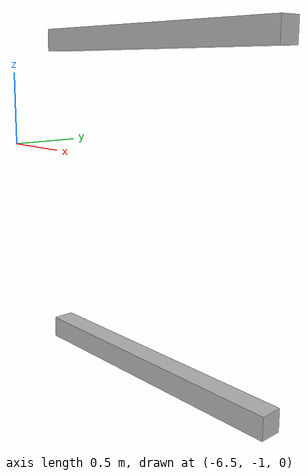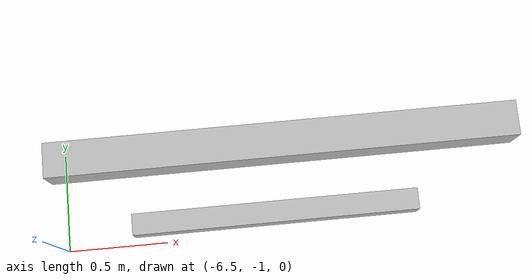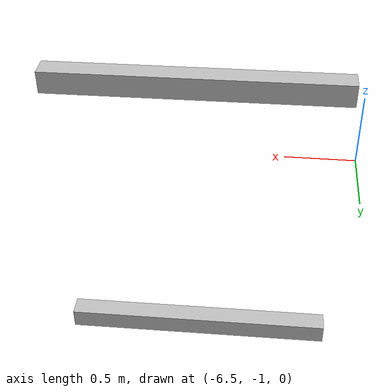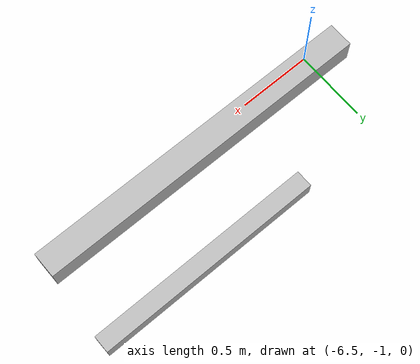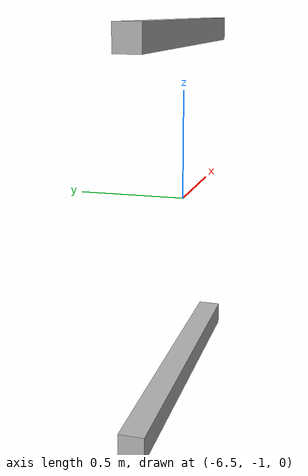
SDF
<sdf version="1.7">
 <world name="default">
  <model name="orthogonal_747_2.000.15_TS">
   <static>1</static>
   <link name="x_link_0_2_0">
    <inertial>
     <mass>1</mass>
     <inertia>
      <ixx>0.166667</ixx>
      <ixy>0</ixy>
      <ixz>0</ixz>
      <iyy>0.166667</iyy>
      <iyz>0</iyz>
      <izz>0.166667</izz>
     </inertia>
    </inertial>
    <pose>1.075 4.3 1.075 0 -0 0</pose>
    <visual name="visual_0">
     <laser_retro>323</laser_retro>
     <geometry><box><size>2 1e-06 0.15</size></box></geometry>
     <material>
      <script><name>Gazebo/Grey</name><uri>file://media/materials/scripts/gazebo.material</uri></script>
      <shader type="pixel"><normal_map>__default__</normal_map></shader>
      <ambient>0.678 0.498 0.659 1</ambient>
      <diffuse>0.7 0.7 0.7 1</diffuse>
      <specular>0.01 0.01 0.01 1</specular>
      <emissive>0 0 0 1</emissive>
     </material>
     <pose>0 -0.075 0 0 -0 0</pose>
     <transparency>1</transparency>
    </visual>
    <visual name="visual_1">
     <laser_retro>324</laser_retro>
     <geometry><box><size>2 1e-06 0.15</size></box></geometry>
     <material>
      <script><name>Gazebo/Grey</name><uri>file://media/materials/scripts/gazebo.material</uri></script>
      <shader type="pixel"><normal_map>__default__</normal_map></shader>
      <ambient>0.447 0.624 0.812 1</ambient>
      <diffuse>0.7 0.7 0.7 1</diffuse>
      <specular>0.01 0.01 0.01 1</specular>
      <emissive>0 0 0 1</emissive>
     </material>
     <pose>0 0.075 0 0 -0 0</pose>
     <transparency>1</transparency>
    </visual>
    <visual name="visual_2">
     <laser_retro>325</laser_retro>
     <geometry><box><size>2 0.15 1e-06</size></box></geometry>
     <material>
      <script><name>Gazebo/Grey</name><uri>file://media/materials/scripts/gazebo.material</uri></script>
      <shader type="pixel"><normal_map>__default__</normal_map></shader>
      <ambient>0.988 0.686 0.243 1</ambient>
      <diffuse>0.7 0.7 0.7 1</diffuse>
      <specular>0.01 0.01 0.01 1</specular>
      <emissive>0 0 0 1</emissive>
     </material>
     <pose>0 0 -0.075 0 -0 0</pose>
     <transparency>1</transparency>
    </visual>
    <visual name="visual_3">
     <laser_retro>326</laser_retro>
     <geometry><box><size>1e-06 0.15 0.15</size></box></geometry>
     <material>
      <script><name>Gazebo/Grey</name><uri>file://media/materials/scripts/gazebo.material</uri></script>
      <shader type="pixel"><normal_map>__default__</normal_map></shader>
      <ambient>0.988 0.914 0.31 1</ambient>
      <diffuse>0.7 0.7 0.7 1</diffuse>
      <specular>0.01 0.01 0.01 1</specular>
      <emissive>0 0 0 1</emissive>
     </material>
     <pose>1 0 0 0 -0 0</pose>
     <transparency>1</transparency>
    </visual>
    <visual name="visual_4">
     <laser_retro>327</laser_retro>
     <geometry><box><size>2 0.15 1e-06</size></box></geometry>
     <material>
      <script><name>Gazebo/Grey</name><uri>file://media/materials/scripts/gazebo.material</uri></script>
      <shader type="pixel"><normal_map>__default__</normal_map></shader>
      <ambient>0.937 0.161 0.161 1</ambient>
      <diffuse>0.7 0.7 0.7 1</diffuse>
      <specular>0.01 0.01 0.01 1</specular>
      <emissive>0 0 0 1</emissive>
     </material>
     <pose>0 0 0.075 0 -0 0</pose>
     <transparency>1</transparency>
    </visual>
    <visual name="visual_5">
     <laser_retro>328</laser_retro>
     <geometry><box><size>1e-06 0.15 0.15</size></box></geometry>
     <material>
      <script><name>Gazebo/Grey</name><uri>file://media/materials/scripts/gazebo.material</uri></script>
      <shader type="pixel"><normal_map>__default__</normal_map></shader>
      <ambient>0.541 0.886 0.204 1</ambient>
      <diffuse>0.7 0.7 0.7 1</diffuse>
      <specular>0.01 0.01 0.01 1</specular>
      <emissive>0 0 0 1</emissive>
     </material>
     <pose>-1 0 0 0 -0 0</pose>
     <transparency>1</transparency>
    </visual>
    <visual name="visual_texture">
     <geometry><box><size>1.9998 0.149985 0.149985</size></box></geometry>
     <material>
      <script>
       <uri>model://BASE_MODELS/simple_block_v2_textured/materials/scripts</uri>
       <uri>model://BASE_MODELS/simple_block_v2_textured/materials/textures</uri>
       <name>metal</name>
      </script>
     </material>
     <laser_retro>329</laser_retro>
    </visual>
    <collision name="collision">
     <geometry><box><size>2 0.15 0.15</size></box></geometry>
     <surface>
      <friction>
       <ode><mu>1</mu><mu2>1</mu2><fdir1>0 0 0</fdir1><slip1>0</slip1><slip2>0</slip2></ode>
       <torsional>
        <coefficient>1</coefficient>
        <patch_radius>0</patch_radius>
        <surface_radius>0</surface_radius>
        <use_patch_radius>1</use_patch_radius>
        <ode><slip>0</slip></ode>
       </torsional>
      </friction>
      <bounce><restitution_coefficient>0</restitution_coefficient><threshold>1e+06</threshold></bounce>
      <contact>
       <collide_without_contact>0</collide_without_contact>
       <collide_without_contact_bitmask>1</collide_without_contact_bitmask>
       <collide_bitmask>1</collide_bitmask>
       <ode>
        <soft_cfm>0</soft_cfm>
        <soft_erp>0.2</soft_erp>
        <kp>1e+13</kp>
        <kd>1</kd>
        <max_vel>0.01</max_vel>
        <min_depth>0</min_depth>
       </ode>
       <bullet>
        <split_impulse>1</split_impulse>
        <split_impulse_penetration_threshold>-0.01</split_impulse_penetration_threshold>
        <soft_cfm>0</soft_cfm>
        <soft_erp>0.2</soft_erp>
        <kp>1e+13</kp>
        <kd>1</kd>
       </bullet>
      </contact>
     </surface>
    </collision>
   </link>
   <link name="x_link_1_2_0">
    <inertial>
     <mass>1</mass>
     <inertia>
      <ixx>0.166667</ixx>
      <ixy>0</ixy>
      <ixz>0</ixz>
      <iyy>0.166667</iyy>
      <iyz>0</iyz>
      <izz>0.166667</izz>
     </inertia>
    </inertial>
    <pose>1.075 4.3 3.225 0 -0 0</pose>
    <visual name="visual_0">
     <laser_retro>1142</laser_retro>
     <geometry><box><size>2 1e-06 0.15</size></box></geometry>
     <material>
      <script><name>Gazebo/Grey</name><uri>file://media/materials/scripts/gazebo.material</uri></script>
      <shader type="pixel"><normal_map>__default__</normal_map></shader>
      <ambient>0.678 0.498 0.659 1</ambient>
      <diffuse>0.7 0.7 0.7 1</diffuse>
      <specular>0.01 0.01 0.01 1</specular>
      <emissive>0 0 0 1</emissive>
     </material>
     <pose>0 -0.075 0 0 -0 0</pose>
     <transparency>1</transparency>
    </visual>
    <visual name="visual_1">
     <laser_retro>1143</laser_retro>
     <geometry><box><size>2 1e-06 0.15</size></box></geometry>
     <material>
      <script><name>Gazebo/Grey</name><uri>file://media/materials/scripts/gazebo.material</uri></script>
      <shader type="pixel"><normal_map>__default__</normal_map></shader>
      <ambient>0.447 0.624 0.812 1</ambient>
      <diffuse>0.7 0.7 0.7 1</diffuse>
      <specular>0.01 0.01 0.01 1</specular>
      <emissive>0 0 0 1</emissive>
     </material>
     <pose>0 0.075 0 0 -0 0</pose>
     <transparency>1</transparency>
    </visual>
    <visual name="visual_2">
     <laser_retro>1144</laser_retro>
     <geometry><box><size>2 0.15 1e-06</size></box></geometry>
     <material>
      <script><name>Gazebo/Grey</name><uri>file://media/materials/scripts/gazebo.material</uri></script>
      <shader type="pixel"><normal_map>__default__</normal_map></shader>
      <ambient>0.988 0.686 0.243 1</ambient>
      <diffuse>0.7 0.7 0.7 1</diffuse>
      <specular>0.01 0.01 0.01 1</specular>
      <emissive>0 0 0 1</emissive>
     </material>
     <pose>0 0 -0.075 0 -0 0</pose>
     <transparency>1</transparency>
    </visual>
    <visual name="visual_3">
     <laser_retro>1145</laser_retro>
     <geometry><box><size>1e-06 0.15 0.15</size></box></geometry>
     <material>
      <script><name>Gazebo/Grey</name><uri>file://media/materials/scripts/gazebo.material</uri></script>
      <shader type="pixel"><normal_map>__default__</normal_map></shader>
      <ambient>0.988 0.914 0.31 1</ambient>
      <diffuse>0.7 0.7 0.7 1</diffuse>
      <specular>0.01 0.01 0.01 1</specular>
      <emissive>0 0 0 1</emissive>
     </material>
     <pose>1 0 0 0 -0 0</pose>
     <transparency>1</transparency>
    </visual>
    <visual name="visual_4">
     <laser_retro>1146</laser_retro>
     <geometry><box><size>2 0.15 1e-06</size></box></geometry>
     <material>
      <script><name>Gazebo/Grey</name><uri>file://media/materials/scripts/gazebo.material</uri></script>
      <shader type="pixel"><normal_map>__default__</normal_map></shader>
      <ambient>0.937 0.161 0.161 1</ambient>
      <diffuse>0.7 0.7 0.7 1</diffuse>
      <specular>0.01 0.01 0.01 1</specular>
      <emissive>0 0 0 1</emissive>
     </material>
     <pose>0 0 0.075 0 -0 0</pose>
     <transparency>1</transparency>
    </visual>
    <visual name="visual_5">
     <laser_retro>1147</laser_retro>
     <geometry><box><size>1e-06 0.15 0.15</size></box></geometry>
     <material>
      <script><name>Gazebo/Grey</name><uri>file://media/materials/scripts/gazebo.material</uri></script>
      <shader type="pixel"><normal_map>__default__</normal_map></shader>
      <ambient>0.541 0.886 0.204 1</ambient>
      <diffuse>0.7 0.7 0.7 1</diffuse>
      <specular>0.01 0.01 0.01 1</specular>
      <emissive>0 0 0 1</emissive>
     </material>
     <pose>-1 0 0 0 -0 0</pose>
     <transparency>1</transparency>
    </visual>
    <visual name="visual_texture">
     <geometry><box><size>1.9998 0.149985 0.149985</size></box></geometry>
     <material>
      <script>
       <uri>model://BASE_MODELS/simple_block_v2_textured/materials/scripts</uri>
       <uri>model://BASE_MODELS/simple_block_v2_textured/materials/textures</uri>
       <name>metal</name>
      </script>
     </material>
     <laser_retro>1148</laser_retro>
    </visual>
    <collision name="collision">
     <geometry><box><size>2 0.15 0.15</size></box></geometry>
     <surface>
      <friction>
       <ode><mu>1</mu><mu2>1</mu2><fdir1>0 0 0</fdir1><slip1>0</slip1><slip2>0</slip2></ode>
       <torsional>
        <coefficient>1</coefficient>
        <patch_radius>0</patch_radius>
        <surface_radius>0</surface_radius>
        <use_patch_radius>1</use_patch_radius>
        <ode><slip>0</slip></ode>
       </torsional>
      </friction>
      <bounce><restitution_coefficient>0</restitution_coefficient><threshold>1e+06</threshold></bounce>
      <contact>
       <collide_without_contact>0</collide_without_contact>
       <collide_without_contact_bitmask>1</collide_without_contact_bitmask>
       <collide_bitmask>1</collide_bitmask>
       <ode>
        <soft_cfm>0</soft_cfm>
        <soft_erp>0.2</soft_erp>
        <kp>1e+13</kp>
        <kd>1</kd>
        <max_vel>0.01</max_vel>
        <min_depth>0</min_depth>
       </ode>
       <bullet>
        <split_impulse>1</split_impulse>
        <split_impulse_penetration_threshold>-0.01</split_impulse_penetration_threshold>
        <soft_cfm>0</soft_cfm>
        <soft_erp>0.2</soft_erp>
        <kp>1e+13</kp>
        <kd>1</kd>
       </bullet>
      </contact>
     </surface>
    </collision>
   </link>
   <pose>-6.47624 -5 -2.5 0 -0 0</pose>
  </model>
 </world>
</sdf>
